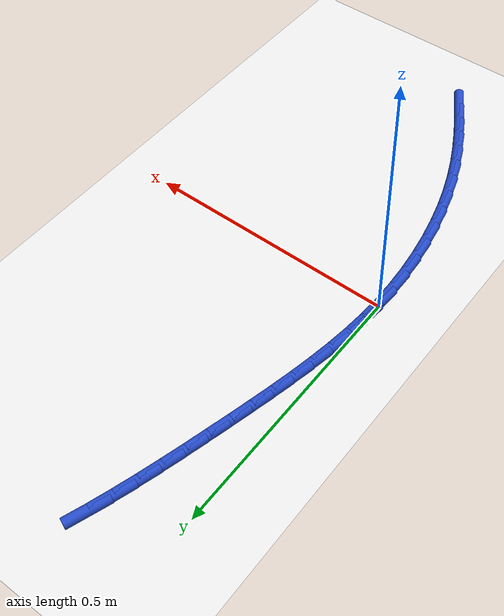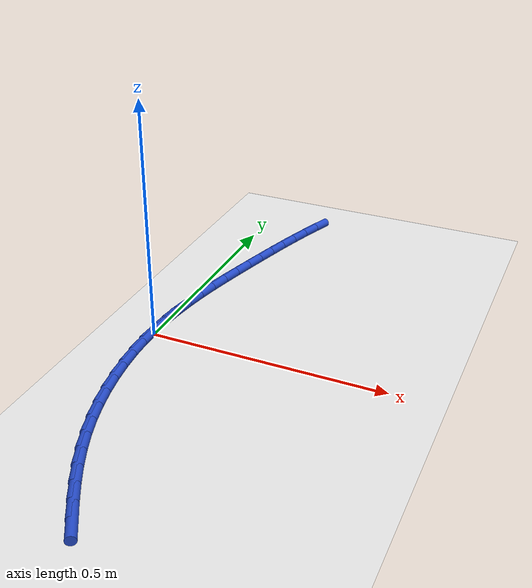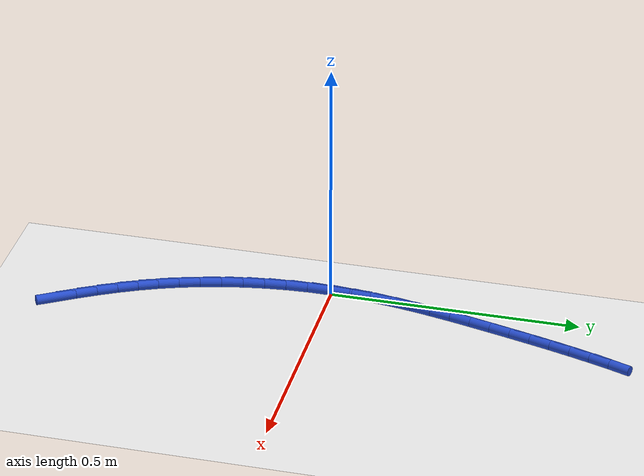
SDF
<sdf version="1.6">
 <world name="default">
  <model name="ground_plane">
   <static>1</static>
   <link name="link">
    <collision name="collision">
     <geometry><plane><normal>0 0 1</normal><size>100 100</size></plane></geometry>
     <surface><friction><ode><mu>100</mu><mu2>50</mu2></ode></friction></surface>
    </collision>
    <visual name="visual">
     <cast_shadows>0</cast_shadows>
     <geometry><plane><normal>0 0 1</normal><size>100 100</size></plane></geometry>
     <material>
      <script><uri>file://media/materials/scripts/gazebo.material</uri><name>Gazebo/WhiteGlow</name></script>
     </material>
    </visual>
   </link>
  </model>
  <model name="line">
   <link name="link_0">
    <pose>-3.469446951953614e-18 2.7755575615628914e-17 0.01 0 1.57 1.5192770141631684</pose>
    <collision name="collision">
     <geometry><cylinder><radius>0.01</radius><length>0.08</length></cylinder></geometry>
    </collision>
    <visual name="visual">
     <material>
      <script><name>Gazebo/Blue</name><uri>file://media/materials/scripts/gazebo.material</uri></script>
     </material>
     <geometry><cylinder><radius>0.01</radius><length>0.08</length></cylinder></geometry>
    </visual>
   </link>
   <link name="link_1">
    <pose>0.0022234696732677346 0.04311979342382623 0.01 0 1.57 1.4721471994053563</pose>
    <collision name="collision">
     <geometry><cylinder><radius>0.01</radius><length>0.08</length></cylinder></geometry>
    </collision>
    <visual name="visual">
     <material>
      <script><name>Gazebo/Blue</name><uri>file://media/materials/scripts/gazebo.material</uri></script>
     </material>
     <geometry><cylinder><radius>0.01</radius><length>0.08</length></cylinder></geometry>
    </visual>
   </link>
   <link name="link_2">
    <pose>0.0064593573812255015 0.08591934138477471 0.01 0 1.57 1.4309773788883353</pose>
    <collision name="collision">
     <geometry><cylinder><radius>0.01</radius><length>0.08</length></cylinder></geometry>
    </collision>
    <visual name="visual">
     <material>
      <script><name>Gazebo/Blue</name><uri>file://media/materials/scripts/gazebo.material</uri></script>
     </material>
     <geometry><cylinder><radius>0.01</radius><length>0.08</length></cylinder></geometry>
    </visual>
   </link>
   <link name="link_3">
    <pose>0.012443802629762442 0.12844145375418758 0.01 0 1.57 1.3959717470039945</pose>
    <collision name="collision">
     <geometry><cylinder><radius>0.01</radius><length>0.08</length></cylinder></geometry>
    </collision>
    <visual name="visual">
     <material>
      <script><name>Gazebo/Blue</name><uri>file://media/materials/scripts/gazebo.material</uri></script>
     </material>
     <geometry><cylinder><radius>0.01</radius><length>0.08</length></cylinder></geometry>
    </visual>
   </link>
   <link name="link_4">
    <pose>0.019912944924767716 0.17072894040340683 0.01 0 1.57 1.3672219263026766</pose>
    <collision name="collision">
     <geometry><cylinder><radius>0.01</radius><length>0.08</length></cylinder></geometry>
    </collision>
    <visual name="visual">
     <material>
      <script><name>Gazebo/Blue</name><uri>file://media/materials/scripts/gazebo.material</uri></script>
     </material>
     <geometry><cylinder><radius>0.01</radius><length>0.08</length></cylinder></geometry>
    </visual>
   </link>
   <link name="link_5">
    <pose>0.028602923772130452 0.21282461120377447 0.01 0 1.57 1.3447455544574447</pose>
    <collision name="collision">
     <geometry><cylinder><radius>0.01</radius><length>0.08</length></cylinder></geometry>
    </collision>
    <visual name="visual">
     <material>
      <script><name>Gazebo/Blue</name><uri>file://media/materials/scripts/gazebo.material</uri></script>
     </material>
     <geometry><cylinder><radius>0.01</radius><length>0.08</length></cylinder></geometry>
    </visual>
   </link>
   <link name="link_6">
    <pose>0.03824987867773981 0.2547712760266326 0.01 0 1.57 1.3285198606982707</pose>
    <collision name="collision">
     <geometry><cylinder><radius>0.01</radius><length>0.08</length></cylinder></geometry>
    </collision>
    <visual name="visual">
     <material>
      <script><name>Gazebo/Blue</name><uri>file://media/materials/scripts/gazebo.material</uri></script>
     </material>
     <geometry><cylinder><radius>0.01</radius><length>0.08</length></cylinder></geometry>
    </visual>
   </link>
   <link name="link_7">
    <pose>0.04858994914748492 0.2966117447433232 0.01 0 1.57 1.3185081648030037</pose>
    <collision name="collision">
     <geometry><cylinder><radius>0.01</radius><length>0.08</length></cylinder></geometry>
    </collision>
    <visual name="visual">
     <material>
      <script><name>Gazebo/Blue</name><uri>file://media/materials/scripts/gazebo.material</uri></script>
     </material>
     <geometry><cylinder><radius>0.01</radius><length>0.08</length></cylinder></geometry>
    </visual>
   </link>
   <link name="link_8">
    <pose>0.05935927468725496 0.3383888272251882 0.01 0 1.57 1.3134630752312044</pose>
    <collision name="collision">
     <geometry><cylinder><radius>0.01</radius><length>0.08</length></cylinder></geometry>
    </collision>
    <visual name="visual">
     <material>
      <script><name>Gazebo/Blue</name><uri>file://media/materials/scripts/gazebo.material</uri></script>
     </material>
     <geometry><cylinder><radius>0.01</radius><length>0.08</length></cylinder></geometry>
    </visual>
   </link>
   <link name="link_9">
    <pose>0.07034483380812126 0.38013233437455646 0.01 0 1.57 1.3070497024468977</pose>
    <collision name="collision">
     <geometry><cylinder><radius>0.01</radius><length>0.08</length></cylinder></geometry>
    </collision>
    <visual name="visual">
     <material>
      <script><name>Gazebo/Blue</name><uri>file://media/materials/scripts/gazebo.material</uri></script>
     </material>
     <geometry><cylinder><radius>0.01</radius><length>0.08</length></cylinder></geometry>
    </visual>
   </link>
   <link name="link_10">
    <pose>0.08159787562917808 0.42180450603424297 0.01 0 1.57 1.2972108795401542</pose>
    <collision name="collision">
     <geometry><cylinder><radius>0.01</radius><length>0.08</length></cylinder></geometry>
    </collision>
    <visual name="visual">
     <material>
      <script><name>Gazebo/Blue</name><uri>file://media/materials/scripts/gazebo.material</uri></script>
     </material>
     <geometry><cylinder><radius>0.01</radius><length>0.08</length></cylinder></geometry>
    </visual>
   </link>
   <link name="link_11">
    <pose>0.09325524970200837 0.4633456949671423 0.01 0 1.57 1.283928789996485</pose>
    <collision name="collision">
     <geometry><cylinder><radius>0.01</radius><length>0.08</length></cylinder></geometry>
    </collision>
    <visual name="visual">
     <material>
      <script><name>Gazebo/Blue</name><uri>file://media/materials/scripts/gazebo.material</uri></script>
     </material>
     <geometry><cylinder><radius>0.01</radius><length>0.08</length></cylinder></geometry>
    </visual>
   </link>
   <link name="link_12">
    <pose>0.10545384949938895 0.5046962427059888 0.01 0 1.57 1.2671825491414752</pose>
    <collision name="collision">
     <geometry><cylinder><radius>0.01</radius><length>0.08</length></cylinder></geometry>
    </collision>
    <visual name="visual">
     <material>
      <script><name>Gazebo/Blue</name><uri>file://media/materials/scripts/gazebo.material</uri></script>
     </material>
     <geometry><cylinder><radius>0.01</radius><length>0.08</length></cylinder></geometry>
    </visual>
   </link>
   <link name="link_13">
    <pose>0.11833056849409648 0.5457964907835161 0.01 0 1.57 1.2469518492633453</pose>
    <collision name="collision">
     <geometry><cylinder><radius>0.01</radius><length>0.08</length></cylinder></geometry>
    </collision>
    <visual name="visual">
     <material>
      <script><name>Gazebo/Blue</name><uri>file://media/materials/scripts/gazebo.material</uri></script>
     </material>
     <geometry><cylinder><radius>0.01</radius><length>0.08</length></cylinder></geometry>
    </visual>
   </link>
   <link name="link_14">
    <pose>0.13202230015890765 0.5865867807324583 0.01 0 1.57 1.2232230078182669</pose>
    <collision name="collision">
     <geometry><cylinder><radius>0.01</radius><length>0.08</length></cylinder></geometry>
    </collision>
    <visual name="visual">
     <material>
      <script><name>Gazebo/Blue</name><uri>file://media/materials/scripts/gazebo.material</uri></script>
     </material>
     <geometry><cylinder><radius>0.01</radius><length>0.08</length></cylinder></geometry>
    </visual>
   </link>
   <link name="link_167">
    <pose>0.1556748031169455 -0.5228392497502841 0.01 0 1.57 -1.0191728641844404</pose>
    <collision name="collision">
     <geometry><cylinder><radius>0.01</radius><length>0.08</length></cylinder></geometry>
    </collision>
    <visual name="visual">
     <material>
      <script><name>Gazebo/Blue</name><uri>file://media/materials/scripts/gazebo.material</uri></script>
     </material>
     <geometry><cylinder><radius>0.01</radius><length>0.08</length></cylinder></geometry>
    </visual>
   </link>
   <link name="link_168">
    <pose>0.13339599042706568 -0.4866336224554664 0.01 0 1.57 -1.0457206203462273</pose>
    <collision name="collision">
     <geometry><cylinder><radius>0.01</radius><length>0.08</length></cylinder></geometry>
    </collision>
    <visual name="visual">
     <material>
      <script><name>Gazebo/Blue</name><uri>file://media/materials/scripts/gazebo.material</uri></script>
     </material>
     <geometry><cylinder><radius>0.01</radius><length>0.08</length></cylinder></geometry>
    </visual>
   </link>
   <link name="link_169">
    <pose>0.11246657878172688 -0.45050614788557886 0.01 0 1.57 -1.080347344079836</pose>
    <collision name="collision">
     <geometry><cylinder><radius>0.01</radius><length>0.08</length></cylinder></geometry>
    </collision>
    <visual name="visual">
     <material>
      <script><name>Gazebo/Blue</name><uri>file://media/materials/scripts/gazebo.material</uri></script>
     </material>
     <geometry><cylinder><radius>0.01</radius><length>0.08</length></cylinder></geometry>
    </visual>
   </link>
   <link name="link_170">
    <pose>0.09300637116431625 -0.4140614231264933 0.01 0 1.57 -1.1224966688379494</pose>
    <collision name="collision">
     <geometry><cylinder><radius>0.01</radius><length>0.08</length></cylinder></geometry>
    </collision>
    <visual name="visual">
     <material>
      <script><name>Gazebo/Blue</name><uri>file://media/materials/scripts/gazebo.material</uri></script>
     </material>
     <geometry><cylinder><radius>0.01</radius><length>0.08</length></cylinder></geometry>
    </visual>
   </link>
   <link name="link_171">
    <pose>0.07513517055822207 -0.37690404526408344 0.01 0 1.57 -1.171149764850858</pose>
    <collision name="collision">
     <geometry><cylinder><radius>0.01</radius><length>0.08</length></cylinder></geometry>
    </collision>
    <visual name="visual">
     <material>
      <script><name>Gazebo/Blue</name><uri>file://media/materials/scripts/gazebo.material</uri></script>
     </material>
     <geometry><cylinder><radius>0.01</radius><length>0.08</length></cylinder></geometry>
    </visual>
   </link>
   <link name="link_172">
    <pose>0.0589727730249127 -0.3386386795484263 0.01 0 1.57 -1.223491077633224</pose>
    <collision name="collision">
     <geometry><cylinder><radius>0.01</radius><length>0.08</length></cylinder></geometry>
    </collision>
    <visual name="visual">
     <material>
      <script><name>Gazebo/Blue</name><uri>file://media/materials/scripts/gazebo.material</uri></script>
     </material>
     <geometry><cylinder><radius>0.01</radius><length>0.08</length></cylinder></geometry>
    </visual>
   </link>
   <link name="link_173">
    <pose>0.04462548411734534 -0.2990028402022757 0.01 0 1.57 -1.2746326031651196</pose>
    <collision name="collision">
     <geometry><cylinder><radius>0.01</radius><length>0.08</length></cylinder></geometry>
    </collision>
    <visual name="visual">
     <material>
      <script><name>Gazebo/Blue</name><uri>file://media/materials/scripts/gazebo.material</uri></script>
     </material>
     <geometry><cylinder><radius>0.01</radius><length>0.08</length></cylinder></geometry>
    </visual>
   </link>
   <link name="link_174">
    <pose>0.03215796071003894 -0.2581441804834762 0.01 0 1.57 -1.3243030534442122</pose>
    <collision name="collision">
     <geometry><cylinder><radius>0.01</radius><length>0.08</length></cylinder></geometry>
    </collision>
    <visual name="visual">
     <material>
      <script><name>Gazebo/Blue</name><uri>file://media/materials/scripts/gazebo.material</uri></script>
     </material>
     <geometry><cylinder><radius>0.01</radius><length>0.08</length></cylinder></geometry>
    </visual>
   </link>
   <link name="link_175">
    <pose>0.02162684752135634 -0.2162892540644375 0.01 0 1.57 -1.3731045861372875</pose>
    <collision name="collision">
     <geometry><cylinder><radius>0.01</radius><length>0.08</length></cylinder></geometry>
    </collision>
    <visual name="visual">
     <material>
      <script><name>Gazebo/Blue</name><uri>file://media/materials/scripts/gazebo.material</uri></script>
     </material>
     <geometry><cylinder><radius>0.01</radius><length>0.08</length></cylinder></geometry>
    </visual>
   </link>
   <link name="link_176">
    <pose>0.013088789269660258 -0.17366461461756877 0.01 0 1.57 -1.4216075921190188</pose>
    <collision name="collision">
     <geometry><cylinder><radius>0.01</radius><length>0.08</length></cylinder></geometry>
    </collision>
    <visual name="visual">
     <material>
      <script><name>Gazebo/Blue</name><uri>file://media/materials/scripts/gazebo.material</uri></script>
     </material>
     <geometry><cylinder><radius>0.01</radius><length>0.08</length></cylinder></geometry>
    </visual>
   </link>
   <link name="link_177">
    <pose>0.006600430673313843 -0.13049681581528136 0.01 0 1.57 -1.4703632896122583</pose>
    <collision name="collision">
     <geometry><cylinder><radius>0.01</radius><length>0.08</length></cylinder></geometry>
    </collision>
    <visual name="visual">
     <material>
      <script><name>Gazebo/Blue</name><uri>file://media/materials/scripts/gazebo.material</uri></script>
     </material>
     <geometry><cylinder><radius>0.01</radius><length>0.08</length></cylinder></geometry>
    </visual>
   </link>
   <link name="link_178">
    <pose>0.0022184164506797712 -0.08701241132998427 0.01 0 1.57 -1.5199153737156204</pose>
    <collision name="collision">
     <geometry><cylinder><radius>0.01</radius><length>0.08</length></cylinder></geometry>
    </collision>
    <visual name="visual">
     <material>
      <script><name>Gazebo/Blue</name><uri>file://media/materials/scripts/gazebo.material</uri></script>
     </material>
     <geometry><cylinder><radius>0.01</radius><length>0.08</length></cylinder></geometry>
    </visual>
   </link>
   <link name="link_179">
    <pose>-6.086798791226505e-07 -0.04343795483408725 0.01 0 1.57 1.570782314167428</pose>
    <collision name="collision">
     <geometry><cylinder><radius>0.01</radius><length>0.08</length></cylinder></geometry>
    </collision>
    <visual name="visual">
     <material>
      <script><name>Gazebo/Blue</name><uri>file://media/materials/scripts/gazebo.material</uri></script>
     </material>
     <geometry><cylinder><radius>0.01</radius><length>0.08</length></cylinder></geometry>
    </visual>
   </link>
   <link name="link_180">
    <pose>5.204170427930421e-18 -1.6653345369377348e-16 0.01 0 1.57 1.517986681210613</pose>
    <collision name="collision">
     <geometry><cylinder><radius>0.01</radius><length>0.08</length></cylinder></geometry>
    </collision>
    <visual name="visual">
     <material>
      <script><name>Gazebo/Blue</name><uri>file://media/materials/scripts/gazebo.material</uri></script>
     </material>
     <geometry><cylinder><radius>0.01</radius><length>0.08</length></cylinder></geometry>
    </visual>
   </link>
   <link name="link_181">
    <pose>0.002276887208680004 0.0430748994998672 0.01 0 1.57 1.5179866812106126</pose>
    <collision name="collision">
     <geometry><cylinder><radius>0.01</radius><length>0.08</length></cylinder></geometry>
    </collision>
    <visual name="visual">
     <material>
      <script><name>Gazebo/Blue</name><uri>file://media/materials/scripts/gazebo.material</uri></script>
     </material>
     <geometry><cylinder><radius>0.01</radius><length>0.08</length></cylinder></geometry>
    </visual>
   </link>
  </model>
 </world>
</sdf>
